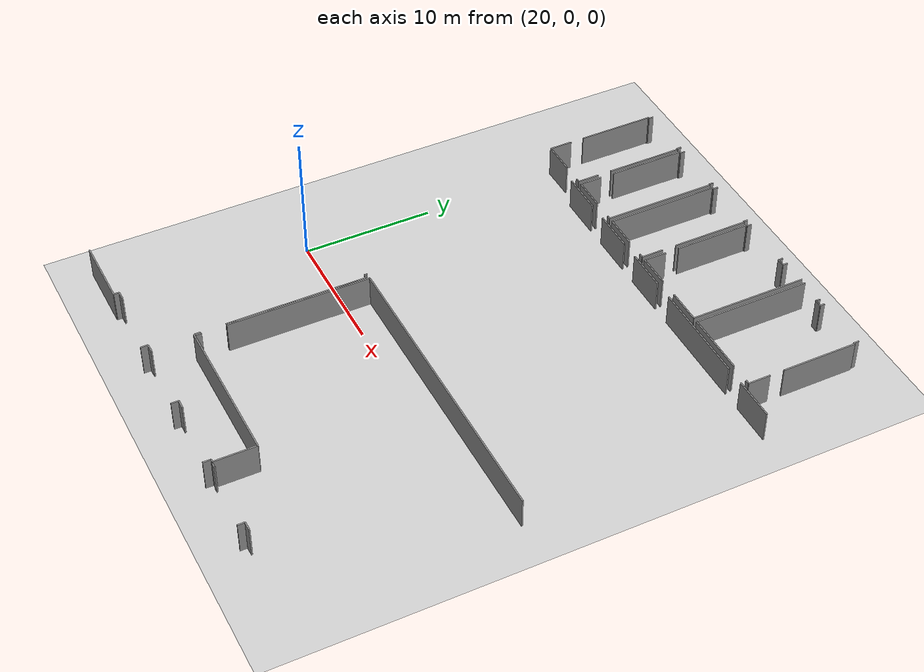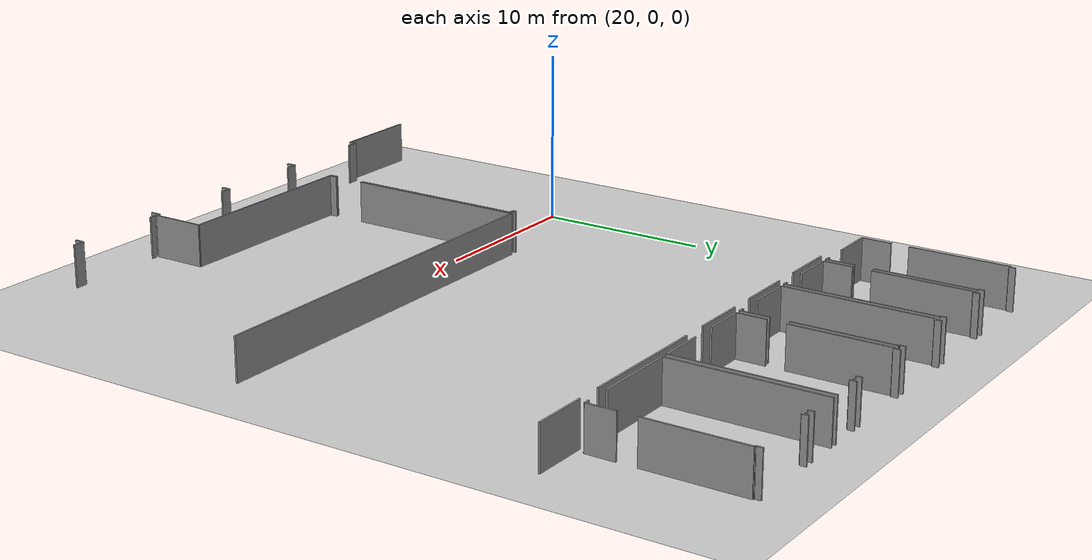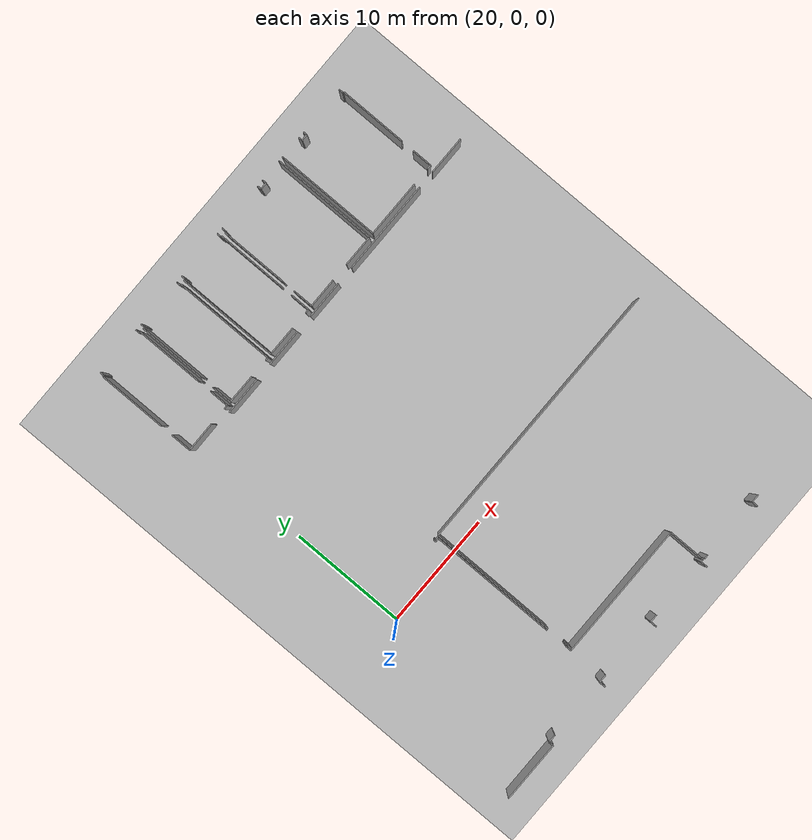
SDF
<sdf version="1.6">
 <world name="default">
  <model name="ground_plane">
   <static>1</static>
   <link name="link">
    <collision name="collision">
     <geometry><plane><normal>0 0 1</normal><size>100 100</size></plane></geometry>
     <surface><friction><ode><mu>100</mu><mu2>50</mu2></ode></friction></surface>
    </collision>
    <visual name="visual">
     <cast_shadows>0</cast_shadows>
     <geometry><plane><normal>0 0 1</normal><size>100 100</size></plane></geometry>
     <material>
      <script><uri>file://media/materials/scripts/gazebo.material</uri><name>Gazebo/Grey</name></script>
     </material>
    </visual>
   </link>
  </model>
  <model name="50010536_PLAN3">
   <static>1</static>
   <link name="Wall_521">
    <collision name="Wall_521_Collision">
     <geometry><box><size>1.76846649525 0.1 2.5</size></box></geometry>
     <pose>0.884233247627 0 1.25 0 0 0</pose>
    </collision>
    <visual name="Wall_521_Visual">
     <pose>0.884233247627 0 1.25 0 0 0</pose>
     <geometry><box><size>1.76846649525 0.1 2.5</size></box></geometry>
     <material>
      <script><uri>file://media/materials/scripts/gazebo.material</uri><name>Gazebo/Grey</name></script>
      <ambient>1 1 1 1</ambient>
     </material>
    </visual>
    <pose>122.498555693 -9.07321842364 0 0 0 1.57079632679</pose>
   </link>
   <link name="Wall_522">
    <collision name="Wall_522_Collision">
     <geometry><box><size>5.85417261848 0.1 2.5</size></box></geometry>
     <pose>2.92708630924 0 1.25 0 0 0</pose>
    </collision>
    <visual name="Wall_522_Visual">
     <pose>2.92708630924 0 1.25 0 0 0</pose>
     <geometry><box><size>5.85417261848 0.1 2.5</size></box></geometry>
     <material>
      <script><uri>file://media/materials/scripts/gazebo.material</uri><name>Gazebo/Grey</name></script>
      <ambient>1 1 1 1</ambient>
     </material>
    </visual>
    <pose>122.498555693 -6.24732882583 0 0 0 1.57079632679</pose>
   </link>
   <link name="Wall_523">
    <collision name="Wall_523_Collision">
     <geometry><box><size>0.113005110624 0.1 2.5</size></box></geometry>
     <pose>0.0565025553122 0 1.25 0 0 0</pose>
    </collision>
    <visual name="Wall_523_Visual">
     <pose>0.0565025553122 0 1.25 0 0 0</pose>
     <geometry><box><size>0.113005110624 0.1 2.5</size></box></geometry>
     <material>
      <script><uri>file://media/materials/scripts/gazebo.material</uri><name>Gazebo/Grey</name></script>
      <ambient>1 1 1 1</ambient>
     </material>
    </visual>
    <pose>122.498555693 -0.393156207345 0 0 0 0.0</pose>
   </link>
   <link name="Wall_524">
    <collision name="Wall_524_Collision">
     <geometry><box><size>0.366060375202 0.1 2.5</size></box></geometry>
     <pose>0.183030187601 0 1.25 0 0 0</pose>
    </collision>
    <visual name="Wall_524_Visual">
     <pose>0.183030187601 0 1.25 0 0 0</pose>
     <geometry><box><size>0.366060375202 0.1 2.5</size></box></geometry>
     <material>
      <script><uri>file://media/materials/scripts/gazebo.material</uri><name>Gazebo/Grey</name></script>
      <ambient>1 1 1 1</ambient>
     </material>
    </visual>
    <pose>122.611560804 -0.393156207345 0 0 0 1.57079632679</pose>
   </link>
   <link name="Wall_525">
    <collision name="Wall_525_Collision">
     <geometry><box><size>0.363140018411 0.1 2.5</size></box></geometry>
     <pose>0.181570009205 0 1.25 0 0 0</pose>
    </collision>
    <visual name="Wall_525_Visual">
     <pose>0.181570009205 0 1.25 0 0 0</pose>
     <geometry><box><size>0.363140018411 0.1 2.5</size></box></geometry>
     <material>
      <script><uri>file://media/materials/scripts/gazebo.material</uri><name>Gazebo/Grey</name></script>
      <ambient>1 1 1 1</ambient>
     </material>
    </visual>
    <pose>126.838713773 -0.027095832143 0 0 0 -1.57079632679</pose>
   </link>
   <link name="Wall_526">
    <collision name="Wall_526_Collision">
     <geometry><box><size>0.099546074977 0.1 2.5</size></box></geometry>
     <pose>0.0497730374885 0 1.25 0 0 0</pose>
    </collision>
    <visual name="Wall_526_Visual">
     <pose>0.0497730374885 0 1.25 0 0 0</pose>
     <geometry><box><size>0.099546074977 0.1 2.5</size></box></geometry>
     <material>
      <script><uri>file://media/materials/scripts/gazebo.material</uri><name>Gazebo/Grey</name></script>
      <ambient>1 1 1 1</ambient>
     </material>
    </visual>
    <pose>126.838713773 -0.390235850554 0 0 0 0.0</pose>
   </link>
   <link name="Wall_527">
    <collision name="Wall_527_Collision">
     <geometry><box><size>5.87283750754 0.1 2.5</size></box></geometry>
     <pose>2.93641875377 0 1.25 0 0 0</pose>
    </collision>
    <visual name="Wall_527_Visual">
     <pose>2.93641875377 0 1.25 0 0 0</pose>
     <geometry><box><size>5.87283750754 0.1 2.5</size></box></geometry>
     <material>
      <script><uri>file://media/materials/scripts/gazebo.material</uri><name>Gazebo/Grey</name></script>
      <ambient>1 1 1 1</ambient>
     </material>
    </visual>
    <pose>126.938259848 -0.390235850554 0 0 0 -1.57079632679</pose>
   </link>
   <link name="Wall_528">
    <collision name="Wall_528_Collision">
     <geometry><box><size>1.68237945592 0.1 2.5</size></box></geometry>
     <pose>0.841189727962 0 1.25 0 0 0</pose>
    </collision>
    <visual name="Wall_528_Visual">
     <pose>0.841189727962 0 1.25 0 0 0</pose>
     <geometry><box><size>1.68237945592 0.1 2.5</size></box></geometry>
     <material>
      <script><uri>file://media/materials/scripts/gazebo.material</uri><name>Gazebo/Grey</name></script>
      <ambient>1 1 1 1</ambient>
     </material>
    </visual>
    <pose>126.938259848 -7.377125988 0 0 0 -1.57079632679</pose>
   </link>
   <link name="Wall_529">
    <collision name="Wall_529_Collision">
     <geometry><box><size>0.354505920071 0.1 2.5</size></box></geometry>
     <pose>0.177252960036 0 1.25 0 0 0</pose>
    </collision>
    <visual name="Wall_529_Visual">
     <pose>0.177252960036 0 1.25 0 0 0</pose>
     <geometry><box><size>0.354505920071 0.1 2.5</size></box></geometry>
     <material>
      <script><uri>file://media/materials/scripts/gazebo.material</uri><name>Gazebo/Grey</name></script>
      <ambient>1 1 1 1</ambient>
     </material>
    </visual>
    <pose>126.938259848 -9.05950544393 0 0 0 3.14159265359</pose>
   </link>
   <link name="Wall_530">
    <collision name="Wall_530_Collision">
     <geometry><box><size>2.59153550332 0.1 2.5</size></box></geometry>
     <pose>1.29576775166 0 1.25 0 0 0</pose>
    </collision>
    <visual name="Wall_530_Visual">
     <pose>1.29576775166 0 1.25 0 0 0</pose>
     <geometry><box><size>2.59153550332 0.1 2.5</size></box></geometry>
     <material>
      <script><uri>file://media/materials/scripts/gazebo.material</uri><name>Gazebo/Grey</name></script>
      <ambient>1 1 1 1</ambient>
     </material>
    </visual>
    <pose>125.090054915 -9.05950544393 0 0 0 -3.13630117921</pose>
   </link>
   <link name="Wall_531">
    <collision name="Wall_531_Collision">
     <geometry><box><size>1.74383392058 0.1 2.5</size></box></geometry>
     <pose>0.871916960289 0 1.25 0 0 0</pose>
    </collision>
    <visual name="Wall_531_Visual">
     <pose>0.871916960289 0 1.25 0 0 0</pose>
     <geometry><box><size>1.74383392058 0.1 2.5</size></box></geometry>
     <material>
      <script><uri>file://media/materials/scripts/gazebo.material</uri><name>Gazebo/Grey</name></script>
      <ambient>1 1 1 1</ambient>
     </material>
    </visual>
    <pose>127.27727518 -9.06356854903 0 0 0 1.57079632679</pose>
   </link>
   <link name="Wall_532">
    <collision name="Wall_532_Collision">
     <geometry><box><size>5.82179474971 0.1 2.5</size></box></geometry>
     <pose>2.91089737485 0 1.25 0 0 0</pose>
    </collision>
    <visual name="Wall_532_Visual">
     <pose>2.91089737485 0 1.25 0 0 0</pose>
     <geometry><box><size>5.82179474971 0.1 2.5</size></box></geometry>
     <material>
      <script><uri>file://media/materials/scripts/gazebo.material</uri><name>Gazebo/Grey</name></script>
      <ambient>1 1 1 1</ambient>
     </material>
    </visual>
    <pose>127.27727518 -6.21558581722 0 0 0 1.57079632679</pose>
   </link>
   <link name="Wall_533">
    <collision name="Wall_533_Collision">
     <geometry><box><size>0.149319112465 0.1 2.5</size></box></geometry>
     <pose>0.0746595562327 0 1.25 0 0 0</pose>
    </collision>
    <visual name="Wall_533_Visual">
     <pose>0.0746595562327 0 1.25 0 0 0</pose>
     <geometry><box><size>0.149319112465 0.1 2.5</size></box></geometry>
     <material>
      <script><uri>file://media/materials/scripts/gazebo.material</uri><name>Gazebo/Grey</name></script>
      <ambient>1 1 1 1</ambient>
     </material>
    </visual>
    <pose>127.27727518 -0.393791067517 0 0 0 0.0</pose>
   </link>
   <link name="Wall_534">
    <collision name="Wall_534_Collision">
     <geometry><box><size>0.358899152462 0.1 2.5</size></box></geometry>
     <pose>0.179449576231 0 1.25 0 0 0</pose>
    </collision>
    <visual name="Wall_534_Visual">
     <pose>0.179449576231 0 1.25 0 0 0</pose>
     <geometry><box><size>0.358899152462 0.1 2.5</size></box></geometry>
     <material>
      <script><uri>file://media/materials/scripts/gazebo.material</uri><name>Gazebo/Grey</name></script>
      <ambient>1 1 1 1</ambient>
     </material>
    </visual>
    <pose>127.426594293 -0.393791067517 0 0 0 1.57079632679</pose>
   </link>
   <link name="Wall_535">
    <collision name="Wall_535_Collision">
     <geometry><box><size>0.343916452401 0.1 2.5</size></box></geometry>
     <pose>0.171958226201 0 1.25 0 0 0</pose>
    </collision>
    <visual name="Wall_535_Visual">
     <pose>0.171958226201 0 1.25 0 0 0</pose>
     <geometry><box><size>0.343916452401 0.1 2.5</size></box></geometry>
     <material>
      <script><uri>file://media/materials/scripts/gazebo.material</uri><name>Gazebo/Grey</name></script>
      <ambient>1 1 1 1</ambient>
     </material>
    </visual>
    <pose>131.609053106 -0.0348919150557 0 0 0 -1.57079632679</pose>
   </link>
   <link name="Wall_536">
    <collision name="Wall_536_Collision">
     <geometry><box><size>0.104117068216 0.1 2.5</size></box></geometry>
     <pose>0.0520585341079 0 1.25 0 0 0</pose>
    </collision>
    <visual name="Wall_536_Visual">
     <pose>0.0520585341079 0 1.25 0 0 0</pose>
     <geometry><box><size>0.104117068216 0.1 2.5</size></box></geometry>
     <material>
      <script><uri>file://media/materials/scripts/gazebo.material</uri><name>Gazebo/Grey</name></script>
      <ambient>1 1 1 1</ambient>
     </material>
    </visual>
    <pose>131.609053106 -0.378808367457 0 0 0 0.0</pose>
   </link>
   <link name="Wall_537">
    <collision name="Wall_537_Collision">
     <geometry><box><size>8.69364822398 0.1 2.5</size></box></geometry>
     <pose>4.34682411199 0 1.25 0 0 0</pose>
    </collision>
    <visual name="Wall_537_Visual">
     <pose>4.34682411199 0 1.25 0 0 0</pose>
     <geometry><box><size>8.69364822398 0.1 2.5</size></box></geometry>
     <material>
      <script><uri>file://media/materials/scripts/gazebo.material</uri><name>Gazebo/Grey</name></script>
      <ambient>1 1 1 1</ambient>
     </material>
    </visual>
    <pose>131.713170174 -0.378808367457 0 0 0 -1.57079632679</pose>
   </link>
   <link name="Wall_538">
    <collision name="Wall_538_Collision">
     <geometry><box><size>0.286956797765 0.1 2.5</size></box></geometry>
     <pose>0.143478398883 0 1.25 0 0 0</pose>
    </collision>
    <visual name="Wall_538_Visual">
     <pose>0.143478398883 0 1.25 0 0 0</pose>
     <geometry><box><size>0.286956797765 0.1 2.5</size></box></geometry>
     <material>
      <script><uri>file://media/materials/scripts/gazebo.material</uri><name>Gazebo/Grey</name></script>
      <ambient>1 1 1 1</ambient>
     </material>
    </visual>
    <pose>131.713170174 -9.07245659144 0 0 0 3.14159265359</pose>
   </link>
   <link name="Wall_539">
    <collision name="Wall_539_Collision">
     <geometry><box><size>2.53869441468 0.1 2.5</size></box></geometry>
     <pose>1.26934720734 0 1.25 0 0 0</pose>
    </collision>
    <visual name="Wall_539_Visual">
     <pose>1.26934720734 0 1.25 0 0 0</pose>
     <geometry><box><size>2.53869441468 0.1 2.5</size></box></geometry>
     <material>
      <script><uri>file://media/materials/scripts/gazebo.material</uri><name>Gazebo/Grey</name></script>
      <ambient>1 1 1 1</ambient>
     </material>
    </visual>
    <pose>129.815954036 -9.07245659144 0 0 0 3.13809161758</pose>
   </link>
   <link name="Wall_540">
    <collision name="Wall_540_Collision">
     <geometry><box><size>8.68328730597 0.1 2.5</size></box></geometry>
     <pose>4.34164365299 0 1.25 0 0 0</pose>
    </collision>
    <visual name="Wall_540_Visual">
     <pose>4.34164365299 0 1.25 0 0 0</pose>
     <geometry><box><size>8.68328730597 0.1 2.5</size></box></geometry>
     <material>
      <script><uri>file://media/materials/scripts/gazebo.material</uri><name>Gazebo/Grey</name></script>
      <ambient>1 1 1 1</ambient>
     </material>
    </visual>
    <pose>132.080881186 -9.06712376599 0 0 0 1.57079632679</pose>
   </link>
   <link name="Wall_541">
    <collision name="Wall_541_Collision">
     <geometry><box><size>0.145002063296 0.1 2.5</size></box></geometry>
     <pose>0.0725010316478 0 1.25 0 0 0</pose>
    </collision>
    <visual name="Wall_541_Visual">
     <pose>0.0725010316478 0 1.25 0 0 0</pose>
     <geometry><box><size>0.145002063296 0.1 2.5</size></box></geometry>
     <material>
      <script><uri>file://media/materials/scripts/gazebo.material</uri><name>Gazebo/Grey</name></script>
      <ambient>1 1 1 1</ambient>
     </material>
    </visual>
    <pose>132.080881186 -0.38383646002 0 0 0 0.0</pose>
   </link>
   <link name="Wall_542">
    <collision name="Wall_542_Collision">
     <geometry><box><size>0.363190807225 0.1 2.5</size></box></geometry>
     <pose>0.181595403612 0 1.25 0 0 0</pose>
    </collision>
    <visual name="Wall_542_Visual">
     <pose>0.181595403612 0 1.25 0 0 0</pose>
     <geometry><box><size>0.363190807225 0.1 2.5</size></box></geometry>
     <material>
      <script><uri>file://media/materials/scripts/gazebo.material</uri><name>Gazebo/Grey</name></script>
      <ambient>1 1 1 1</ambient>
     </material>
    </visual>
    <pose>132.225883249 -0.38383646002 0 0 0 1.57079632679</pose>
   </link>
   <link name="Wall_543">
    <collision name="Wall_543_Collision">
     <geometry><box><size>0.346684442751 0.1 2.5</size></box></geometry>
     <pose>0.173342221376 0 1.25 0 0 0</pose>
    </collision>
    <visual name="Wall_543_Visual">
     <pose>0.173342221376 0 1.25 0 0 0</pose>
     <geometry><box><size>0.346684442751 0.1 2.5</size></box></geometry>
     <material>
      <script><uri>file://media/materials/scripts/gazebo.material</uri><name>Gazebo/Grey</name></script>
      <ambient>1 1 1 1</ambient>
     </material>
    </visual>
    <pose>136.431450973 -0.020645652795 0 0 0 -1.57079632679</pose>
   </link>
   <link name="Wall_544">
    <collision name="Wall_544_Collision">
     <geometry><box><size>0.0825318223661 0.1 2.5</size></box></geometry>
     <pose>0.0412659111831 0 1.25 0 0 0</pose>
    </collision>
    <visual name="Wall_544_Visual">
     <pose>0.0412659111831 0 1.25 0 0 0</pose>
     <geometry><box><size>0.0825318223661 0.1 2.5</size></box></geometry>
     <material>
      <script><uri>file://media/materials/scripts/gazebo.material</uri><name>Gazebo/Grey</name></script>
      <ambient>1 1 1 1</ambient>
     </material>
    </visual>
    <pose>136.431450973 -0.367330095546 0 0 0 0.0</pose>
   </link>
   <link name="Wall_545">
    <collision name="Wall_545_Collision">
     <geometry><box><size>5.88456972352 0.1 2.5</size></box></geometry>
     <pose>2.94228486176 0 1.25 0 0 0</pose>
    </collision>
    <visual name="Wall_545_Visual">
     <pose>2.94228486176 0 1.25 0 0 0</pose>
     <geometry><box><size>5.88456972352 0.1 2.5</size></box></geometry>
     <material>
      <script><uri>file://media/materials/scripts/gazebo.material</uri><name>Gazebo/Grey</name></script>
      <ambient>1 1 1 1</ambient>
     </material>
    </visual>
    <pose>136.513982795 -0.367330095546 0 0 0 -1.57079632679</pose>
   </link>
   <link name="Wall_546">
    <collision name="Wall_546_Collision">
     <geometry><box><size>1.70777386281 0.1 2.5</size></box></geometry>
     <pose>0.853886931403 0 1.25 0 0 0</pose>
    </collision>
    <visual name="Wall_546_Visual">
     <pose>0.853886931403 0 1.25 0 0 0</pose>
     <geometry><box><size>1.70777386281 0.1 2.5</size></box></geometry>
     <material>
      <script><uri>file://media/materials/scripts/gazebo.material</uri><name>Gazebo/Grey</name></script>
      <ambient>1 1 1 1</ambient>
     </material>
    </visual>
    <pose>136.513982795 -7.35579468622 0 0 0 -1.57079632679</pose>
   </link>
   <link name="Wall_547">
    <collision name="Wall_547_Collision">
     <geometry><box><size>0.346633653938 0.1 2.5</size></box></geometry>
     <pose>0.173316826969 0 1.25 0 0 0</pose>
    </collision>
    <visual name="Wall_547_Visual">
     <pose>0.173316826969 0 1.25 0 0 0</pose>
     <geometry><box><size>0.346633653938 0.1 2.5</size></box></geometry>
     <material>
      <script><uri>file://media/materials/scripts/gazebo.material</uri><name>Gazebo/Grey</name></script>
      <ambient>1 1 1 1</ambient>
     </material>
    </visual>
    <pose>136.513982795 -9.06356854903 0 0 0 3.14159265359</pose>
   </link>
   <link name="Wall_548">
    <collision name="Wall_548_Collision">
     <geometry><box><size>2.58464517757 0.1 2.5</size></box></geometry>
     <pose>1.29232258878 0 1.25 0 0 0</pose>
    </collision>
    <visual name="Wall_548_Visual">
     <pose>1.29232258878 0 1.25 0 0 0</pose>
     <geometry><box><size>2.58464517757 0.1 2.5</size></box></geometry>
     <material>
      <script><uri>file://media/materials/scripts/gazebo.material</uri><name>Gazebo/Grey</name></script>
      <ambient>1 1 1 1</ambient>
     </material>
    </visual>
    <pose>134.665523918 -9.06356854903 0 0 0 -3.14021713864</pose>
   </link>
   <link name="Wall_549">
    <collision name="Wall_549_Collision">
     <geometry><box><size>1.75627717995 0.1 2.5</size></box></geometry>
     <pose>0.878138589976 0 1.25 0 0 0</pose>
    </collision>
    <visual name="Wall_549_Visual">
     <pose>0.878138589976 0 1.25 0 0 0</pose>
     <geometry><box><size>1.75627717995 0.1 2.5</size></box></geometry>
     <material>
      <script><uri>file://media/materials/scripts/gazebo.material</uri><name>Gazebo/Grey</name></script>
      <ambient>1 1 1 1</ambient>
     </material>
    </visual>
    <pose>136.879154366 -9.06686982192 0 0 0 1.57079632679</pose>
   </link>
   <link name="Wall_550">
    <collision name="Wall_550_Collision">
     <geometry><box><size>5.80983398407 0.1 2.5</size></box></geometry>
     <pose>2.90491699203 0 1.25 0 0 0</pose>
    </collision>
    <visual name="Wall_550_Visual">
     <pose>2.90491699203 0 1.25 0 0 0</pose>
     <geometry><box><size>5.80983398407 0.1 2.5</size></box></geometry>
     <material>
      <script><uri>file://media/materials/scripts/gazebo.material</uri><name>Gazebo/Grey</name></script>
      <ambient>1 1 1 1</ambient>
     </material>
    </visual>
    <pose>136.879154366 -6.21431609688 0 0 0 1.57079632679</pose>
   </link>
   <link name="Wall_551">
    <collision name="Wall_551_Collision">
     <geometry><box><size>0.111989334349 0.1 2.5</size></box></geometry>
     <pose>0.0559946671746 0 1.25 0 0 0</pose>
    </collision>
    <visual name="Wall_551_Visual">
     <pose>0.0559946671746 0 1.25 0 0 0</pose>
     <geometry><box><size>0.111989334349 0.1 2.5</size></box></geometry>
     <material>
      <script><uri>file://media/materials/scripts/gazebo.material</uri><name>Gazebo/Grey</name></script>
      <ambient>1 1 1 1</ambient>
     </material>
    </visual>
    <pose>136.879154366 -0.404482112815 0 0 0 0.0</pose>
   </link>
   <link name="Wall_552">
    <collision name="Wall_552_Collision">
     <geometry><box><size>0.379722566105 0.1 2.5</size></box></geometry>
     <pose>0.189861283052 0 1.25 0 0 0</pose>
    </collision>
    <visual name="Wall_552_Visual">
     <pose>0.189861283052 0 1.25 0 0 0</pose>
     <geometry><box><size>0.379722566105 0.1 2.5</size></box></geometry>
     <material>
      <script><uri>file://media/materials/scripts/gazebo.material</uri><name>Gazebo/Grey</name></script>
      <ambient>1 1 1 1</ambient>
     </material>
    </visual>
    <pose>136.991143701 -0.404482112815 0 0 0 1.57079632679</pose>
   </link>
   <link name="Wall_553">
    <collision name="Wall_553_Collision">
     <geometry><box><size>0.346481287496 0.1 2.5</size></box></geometry>
     <pose>0.173240643748 0 1.25 0 0 0</pose>
    </collision>
    <visual name="Wall_553_Visual">
     <pose>0.173240643748 0 1.25 0 0 0</pose>
     <geometry><box><size>0.346481287496 0.1 2.5</size></box></geometry>
     <material>
      <script><uri>file://media/materials/scripts/gazebo.material</uri><name>Gazebo/Grey</name></script>
      <ambient>1 1 1 1</ambient>
     </material>
    </visual>
    <pose>141.18706155 -0.0247595467098 0 0 0 -1.57079632679</pose>
   </link>
   <link name="Wall_554">
    <collision name="Wall_554_Collision">
     <geometry><box><size>0.593213344761 0.1 2.5</size></box></geometry>
     <pose>0.29660667238 0 1.25 0 0 0</pose>
    </collision>
    <visual name="Wall_554_Visual">
     <pose>0.29660667238 0 1.25 0 0 0</pose>
     <geometry><box><size>0.593213344761 0.1 2.5</size></box></geometry>
     <material>
      <script><uri>file://media/materials/scripts/gazebo.material</uri><name>Gazebo/Grey</name></script>
      <ambient>1 1 1 1</ambient>
     </material>
    </visual>
    <pose>141.18706155 -0.371240834206 0 0 0 0.0</pose>
   </link>
   <link name="Wall_555">
    <collision name="Wall_555_Collision">
     <geometry><box><size>0.365476303844 0.1 2.5</size></box></geometry>
     <pose>0.182738151922 0 1.25 0 0 0</pose>
    </collision>
    <visual name="Wall_555_Visual">
     <pose>0.182738151922 0 1.25 0 0 0</pose>
     <geometry><box><size>0.365476303844 0.1 2.5</size></box></geometry>
     <material>
      <script><uri>file://media/materials/scripts/gazebo.material</uri><name>Gazebo/Grey</name></script>
      <ambient>1 1 1 1</ambient>
     </material>
    </visual>
    <pose>141.780274894 -0.371240834206 0 0 0 1.57079632679</pose>
   </link>
   <link name="Wall_556">
    <collision name="Wall_556_Collision">
     <geometry><box><size>9.05145541694 0.1 2.5</size></box></geometry>
     <pose>4.52572770847 0 1.25 0 0 0</pose>
    </collision>
    <visual name="Wall_556_Visual">
     <pose>4.52572770847 0 1.25 0 0 0</pose>
     <geometry><box><size>9.05145541694 0.1 2.5</size></box></geometry>
     <material>
      <script><uri>file://media/materials/scripts/gazebo.material</uri><name>Gazebo/Grey</name></script>
      <ambient>1 1 1 1</ambient>
     </material>
    </visual>
    <pose>143.712027426 -0.00576453036219 0 0 0 -1.57079632679</pose>
   </link>
   <link name="Wall_557">
    <collision name="Wall_557_Collision">
     <geometry><box><size>2.72431197029 0.1 2.5</size></box></geometry>
     <pose>1.36215598514 0 1.25 0 0 0</pose>
    </collision>
    <visual name="Wall_557_Visual">
     <pose>1.36215598514 0 1.25 0 0 0</pose>
     <geometry><box><size>2.72431197029 0.1 2.5</size></box></geometry>
     <material>
      <script><uri>file://media/materials/scripts/gazebo.material</uri><name>Gazebo/Grey</name></script>
      <ambient>1 1 1 1</ambient>
     </material>
    </visual>
    <pose>143.712027426 -9.05721994731 0 0 0 3.14159265359</pose>
   </link>
   <link name="Wall_558">
    <collision name="Wall_558_Collision">
     <geometry><box><size>2.56002834514 0.1 2.5</size></box></geometry>
     <pose>1.28001417257 0 1.25 0 0 0</pose>
    </collision>
    <visual name="Wall_558_Visual">
     <pose>1.28001417257 0 1.25 0 0 0</pose>
     <geometry><box><size>2.56002834514 0.1 2.5</size></box></geometry>
     <material>
      <script><uri>file://media/materials/scripts/gazebo.material</uri><name>Gazebo/Grey</name></script>
      <ambient>1 1 1 1</ambient>
     </material>
    </visual>
    <pose>139.439164524 -9.05721994731 0 0 0 -3.13782320413</pose>
   </link>
   <link name="Wall_559">
    <collision name="Wall_559_Collision">
     <geometry><box><size>9.05099831762 0.1 2.5</size></box></geometry>
     <pose>4.52549915881 0 1.25 0 0 0</pose>
    </collision>
    <visual name="Wall_559_Visual">
     <pose>4.52549915881 0 1.25 0 0 0</pose>
     <geometry><box><size>9.05099831762 0.1 2.5</size></box></geometry>
     <material>
      <script><uri>file://media/materials/scripts/gazebo.material</uri><name>Gazebo/Grey</name></script>
      <ambient>1 1 1 1</ambient>
     </material>
    </visual>
    <pose>144.113512999 -9.06356854903 0 0 0 1.57079632679</pose>
   </link>
   <link name="Wall_560">
    <collision name="Wall_560_Collision">
     <geometry><box><size>0.351509380059 0.1 2.5</size></box></geometry>
     <pose>0.17575469003 0 1.25 0 0 0</pose>
    </collision>
    <visual name="Wall_560_Visual">
     <pose>0.17575469003 0 1.25 0 0 0</pose>
     <geometry><box><size>0.351509380059 0.1 2.5</size></box></geometry>
     <material>
      <script><uri>file://media/materials/scripts/gazebo.material</uri><name>Gazebo/Grey</name></script>
      <ambient>1 1 1 1</ambient>
     </material>
    </visual>
    <pose>146.041456369 -0.0125702314065 0 0 0 -1.57079632679</pose>
   </link>
   <link name="Wall_561">
    <collision name="Wall_561_Collision">
     <geometry><box><size>0.55258229375 0.1 2.5</size></box></geometry>
     <pose>0.276291146875 0 1.25 0 0 0</pose>
    </collision>
    <visual name="Wall_561_Visual">
     <pose>0.276291146875 0 1.25 0 0 0</pose>
     <geometry><box><size>0.55258229375 0.1 2.5</size></box></geometry>
     <material>
      <script><uri>file://media/materials/scripts/gazebo.material</uri><name>Gazebo/Grey</name></script>
      <ambient>1 1 1 1</ambient>
     </material>
    </visual>
    <pose>146.041456369 -0.364079611466 0 0 0 0.0</pose>
   </link>
   <link name="Wall_562">
    <collision name="Wall_562_Collision">
     <geometry><box><size>0.351509380059 0.1 2.5</size></box></geometry>
     <pose>0.17575469003 0 1.25 0 0 0</pose>
    </collision>
    <visual name="Wall_562_Visual">
     <pose>0.17575469003 0 1.25 0 0 0</pose>
     <geometry><box><size>0.351509380059 0.1 2.5</size></box></geometry>
     <material>
      <script><uri>file://media/materials/scripts/gazebo.material</uri><name>Gazebo/Grey</name></script>
      <ambient>1 1 1 1</ambient>
     </material>
    </visual>
    <pose>146.594038663 -0.364079611466 0 0 0 1.57079632679</pose>
   </link>
   <link name="Wall_563">
    <collision name="Wall_563_Collision">
     <geometry><box><size>0.381220836111 0.1 2.5</size></box></geometry>
     <pose>0.190610418055 0 1.25 0 0 0</pose>
    </collision>
    <visual name="Wall_563_Visual">
     <pose>0.190610418055 0 1.25 0 0 0</pose>
     <geometry><box><size>0.381220836111 0.1 2.5</size></box></geometry>
     <material>
      <script><uri>file://media/materials/scripts/gazebo.material</uri><name>Gazebo/Grey</name></script>
      <ambient>1 1 1 1</ambient>
     </material>
    </visual>
    <pose>150.820175856 -0.0125702314065 0 0 0 -1.57079632679</pose>
   </link>
   <link name="Wall_564">
    <collision name="Wall_564_Collision">
     <geometry><box><size>0.0906580325683 0.1 2.5</size></box></geometry>
     <pose>0.0453290162842 0 1.25 0 0 0</pose>
    </collision>
    <visual name="Wall_564_Visual">
     <pose>0.0453290162842 0 1.25 0 0 0</pose>
     <geometry><box><size>0.0906580325683 0.1 2.5</size></box></geometry>
     <material>
      <script><uri>file://media/materials/scripts/gazebo.material</uri><name>Gazebo/Grey</name></script>
      <ambient>1 1 1 1</ambient>
     </material>
    </visual>
    <pose>150.820175856 -0.393791067517 0 0 0 0.0</pose>
   </link>
   <link name="Wall_565">
    <collision name="Wall_565_Collision">
     <geometry><box><size>5.83271434467 0.1 2.5</size></box></geometry>
     <pose>2.91635717233 0 1.25 0 0 0</pose>
    </collision>
    <visual name="Wall_565_Visual">
     <pose>2.91635717233 0 1.25 0 0 0</pose>
     <geometry><box><size>5.83271434467 0.1 2.5</size></box></geometry>
     <material>
      <script><uri>file://media/materials/scripts/gazebo.material</uri><name>Gazebo/Grey</name></script>
      <ambient>1 1 1 1</ambient>
     </material>
    </visual>
    <pose>150.910833889 -0.393791067517 0 0 0 -1.57079632679</pose>
   </link>
   <link name="Wall_566">
    <collision name="Wall_566_Collision">
     <geometry><box><size>1.71945528997 0.1 2.5</size></box></geometry>
     <pose>0.859727644986 0 1.25 0 0 0</pose>
    </collision>
    <visual name="Wall_566_Visual">
     <pose>0.859727644986 0 1.25 0 0 0</pose>
     <geometry><box><size>1.71945528997 0.1 2.5</size></box></geometry>
     <material>
      <script><uri>file://media/materials/scripts/gazebo.material</uri><name>Gazebo/Grey</name></script>
      <ambient>1 1 1 1</ambient>
     </material>
    </visual>
    <pose>150.910833889 -7.34741453195 0 0 0 -1.57079632679</pose>
   </link>
   <link name="Wall_567">
    <collision name="Wall_567_Collision">
     <geometry><box><size>0.336729835254 0.1 2.5</size></box></geometry>
     <pose>0.168364917627 0 1.25 0 0 0</pose>
    </collision>
    <visual name="Wall_567_Visual">
     <pose>0.168364917627 0 1.25 0 0 0</pose>
     <geometry><box><size>0.336729835254 0.1 2.5</size></box></geometry>
     <material>
      <script><uri>file://media/materials/scripts/gazebo.material</uri><name>Gazebo/Grey</name></script>
      <ambient>1 1 1 1</ambient>
     </material>
    </visual>
    <pose>150.910833889 -9.06686982192 0 0 0 3.14159265359</pose>
   </link>
   <link name="Wall_568">
    <collision name="Wall_568_Collision">
     <geometry><box><size>4.91915166484 0.1 2.5</size></box></geometry>
     <pose>2.45957583242 0 1.25 0 0 0</pose>
    </collision>
    <visual name="Wall_568_Visual">
     <pose>2.45957583242 0 1.25 0 0 0</pose>
     <geometry><box><size>4.91915166484 0.1 2.5</size></box></geometry>
     <material>
      <script><uri>file://media/materials/scripts/gazebo.material</uri><name>Gazebo/Grey</name></script>
      <ambient>1 1 1 1</ambient>
     </material>
    </visual>
    <pose>149.032663556 -9.06686982192 0 0 0 3.1409215474</pose>
   </link>
   <link name="Wall_601">
    <collision name="Wall_601_Collision">
     <geometry><box><size>3.2649588928 0.1 2.5</size></box></geometry>
     <pose>1.6324794464 0 1.25 0 0 0</pose>
    </collision>
    <visual name="Wall_601_Visual">
     <pose>1.6324794464 0 1.25 0 0 0</pose>
     <geometry><box><size>3.2649588928 0.1 2.5</size></box></geometry>
     <material>
      <script><uri>file://media/materials/scripts/gazebo.material</uri><name>Gazebo/Grey</name></script>
      <ambient>1 1 1 1</ambient>
     </material>
    </visual>
    <pose>126.632765133 -9.51355743897 0 0 0 0.0</pose>
   </link>
   <link name="Wall_602">
    <collision name="Wall_602_Collision">
     <geometry><box><size>3.26140367584 0.1 2.5</size></box></geometry>
     <pose>1.63070183792 0 1.25 0 0 0</pose>
    </collision>
    <visual name="Wall_602_Visual">
     <pose>1.63070183792 0 1.25 0 0 0</pose>
     <geometry><box><size>3.26140367584 0.1 2.5</size></box></geometry>
     <material>
      <script><uri>file://media/materials/scripts/gazebo.material</uri><name>Gazebo/Grey</name></script>
      <ambient>1 1 1 1</ambient>
     </material>
    </visual>
    <pose>131.440942132 -9.51355743897 0 0 0 0.0</pose>
   </link>
   <link name="Wall_603">
    <collision name="Wall_603_Collision">
     <geometry><box><size>3.29213090817 0.1 2.5</size></box></geometry>
     <pose>1.64606545408 0 1.25 0 0 0</pose>
    </collision>
    <visual name="Wall_603_Visual">
     <pose>1.64606545408 0 1.25 0 0 0</pose>
     <geometry><box><size>3.29213090817 0.1 2.5</size></box></geometry>
     <material>
      <script><uri>file://media/materials/scripts/gazebo.material</uri><name>Gazebo/Grey</name></script>
      <ambient>1 1 1 1</ambient>
     </material>
    </visual>
    <pose>136.202393423 -9.51355743897 0 0 0 0.0</pose>
   </link>
   <link name="Wall_604">
    <collision name="Wall_604_Collision">
     <geometry><box><size>8.06094657652 0.1 2.5</size></box></geometry>
     <pose>4.03047328826 0 1.25 0 0 0</pose>
    </collision>
    <visual name="Wall_604_Visual">
     <pose>4.03047328826 0 1.25 0 0 0</pose>
     <geometry><box><size>8.06094657652 0.1 2.5</size></box></geometry>
     <material>
      <script><uri>file://media/materials/scripts/gazebo.material</uri><name>Gazebo/Grey</name></script>
      <ambient>1 1 1 1</ambient>
     </material>
    </visual>
    <pose>141.045614703 -9.51355743897 0 0 0 0.0</pose>
   </link>
   <link name="Wall_605">
    <collision name="Wall_605_Collision">
     <geometry><box><size>3.2885756912 0.1 2.5</size></box></geometry>
     <pose>1.6442878456 0 1.25 0 0 0</pose>
    </collision>
    <visual name="Wall_605_Visual">
     <pose>1.6442878456 0 1.25 0 0 0</pose>
     <geometry><box><size>3.2885756912 0.1 2.5</size></box></geometry>
     <material>
      <script><uri>file://media/materials/scripts/gazebo.material</uri><name>Gazebo/Grey</name></script>
      <ambient>1 1 1 1</ambient>
     </material>
    </visual>
    <pose>150.623369203 -9.51355743897 0 0 0 0.0</pose>
   </link>
   <link name="Wall_825">
    <collision name="Wall_825_Collision">
     <geometry><box><size>0.196298765197 0.1 2.5</size></box></geometry>
     <pose>0.0981493825985 0 1.25 0 0 0</pose>
    </collision>
    <visual name="Wall_825_Visual">
     <pose>0.0981493825985 0 1.25 0 0 0</pose>
     <geometry><box><size>0.196298765197 0.1 2.5</size></box></geometry>
     <material>
      <script><uri>file://media/materials/scripts/gazebo.material</uri><name>Gazebo/Grey</name></script>
      <ambient>1 1 1 1</ambient>
     </material>
    </visual>
    <pose>129.274037393 -27.7200774529 0 0 0 -1.57079632679</pose>
   </link>
   <link name="Wall_826">
    <collision name="Wall_826_Collision">
     <geometry><box><size>0.327587848776 0.1 2.5</size></box></geometry>
     <pose>0.163793924388 0 1.25 0 0 0</pose>
    </collision>
    <visual name="Wall_826_Visual">
     <pose>0.163793924388 0 1.25 0 0 0</pose>
     <geometry><box><size>0.327587848776 0.1 2.5</size></box></geometry>
     <material>
      <script><uri>file://media/materials/scripts/gazebo.material</uri><name>Gazebo/Grey</name></script>
      <ambient>1 1 1 1</ambient>
     </material>
    </visual>
    <pose>129.274037393 -27.9163762181 0 0 0 0.0</pose>
   </link>
   <link name="Wall_827">
    <collision name="Wall_827_Collision">
     <geometry><box><size>10.8185252198 0.1 2.5</size></box></geometry>
     <pose>5.40926260991 0 1.25 0 0 0</pose>
    </collision>
    <visual name="Wall_827_Visual">
     <pose>5.40926260991 0 1.25 0 0 0</pose>
     <geometry><box><size>10.8185252198 0.1 2.5</size></box></geometry>
     <material>
      <script><uri>file://media/materials/scripts/gazebo.material</uri><name>Gazebo/Grey</name></script>
      <ambient>1 1 1 1</ambient>
     </material>
    </visual>
    <pose>129.601625242 -27.9163762181 0 0 0 -1.57079632679</pose>
   </link>
   <link name="Wall_828">
    <collision name="Wall_828_Collision">
     <geometry><box><size>0.490873885027 0.1 2.5</size></box></geometry>
     <pose>0.245436942513 0 1.25 0 0 0</pose>
    </collision>
    <visual name="Wall_828_Visual">
     <pose>0.245436942513 0 1.25 0 0 0</pose>
     <geometry><box><size>0.490873885027 0.1 2.5</size></box></geometry>
     <material>
      <script><uri>file://media/materials/scripts/gazebo.material</uri><name>Gazebo/Grey</name></script>
      <ambient>1 1 1 1</ambient>
     </material>
    </visual>
    <pose>129.601625242 -40.6404977304 0 0 0 -1.57079632679</pose>
   </link>
   <link name="Wall_829">
    <collision name="Wall_829_Collision">
     <geometry><box><size>11.782242961 0.1 2.5</size></box></geometry>
     <pose>5.89112148049 0 1.25 0 0 0</pose>
    </collision>
    <visual name="Wall_829_Visual">
     <pose>5.89112148049 0 1.25 0 0 0</pose>
     <geometry><box><size>11.782242961 0.1 2.5</size></box></geometry>
     <material>
      <script><uri>file://media/materials/scripts/gazebo.material</uri><name>Gazebo/Grey</name></script>
      <ambient>1 1 1 1</ambient>
     </material>
    </visual>
    <pose>129.601625242 -41.1313716154 0 0 0 0.0</pose>
   </link>
   <link name="Wall_830">
    <collision name="Wall_830_Collision">
     <geometry><box><size>3.20502809256 0.1 2.5</size></box></geometry>
     <pose>1.60251404628 0 1.25 0 0 0</pose>
    </collision>
    <visual name="Wall_830_Visual">
     <pose>1.60251404628 0 1.25 0 0 0</pose>
     <geometry><box><size>3.20502809256 0.1 2.5</size></box></geometry>
     <material>
      <script><uri>file://media/materials/scripts/gazebo.material</uri><name>Gazebo/Grey</name></script>
      <ambient>1 1 1 1</ambient>
     </material>
    </visual>
    <pose>141.383868203 -41.1313716154 0 0 0 -1.57079632679</pose>
   </link>
   <link name="Wall_831">
    <collision name="Wall_831_Collision">
     <geometry><box><size>0.224994444974 0.1 2.5</size></box></geometry>
     <pose>0.112497222487 0 1.25 0 0 0</pose>
    </collision>
    <visual name="Wall_831_Visual">
     <pose>0.112497222487 0 1.25 0 0 0</pose>
     <geometry><box><size>0.224994444974 0.1 2.5</size></box></geometry>
     <material>
      <script><uri>file://media/materials/scripts/gazebo.material</uri><name>Gazebo/Grey</name></script>
      <ambient>1 1 1 1</ambient>
     </material>
    </visual>
    <pose>141.383868203 -44.336399708 0 0 0 3.14159265359</pose>
   </link>
   <link name="Wall_832">
    <collision name="Wall_832_Collision">
     <geometry><box><size>0.613782814335 0.1 2.5</size></box></geometry>
     <pose>0.306891407168 0 1.25 0 0 0</pose>
    </collision>
    <visual name="Wall_832_Visual">
     <pose>0.306891407168 0 1.25 0 0 0</pose>
     <geometry><box><size>0.613782814335 0.1 2.5</size></box></geometry>
     <material>
      <script><uri>file://media/materials/scripts/gazebo.material</uri><name>Gazebo/Grey</name></script>
      <ambient>1 1 1 1</ambient>
     </material>
    </visual>
    <pose>141.158873758 -44.336399708 0 0 0 -1.57079632679</pose>
   </link>
   <link name="Wall_835">
    <collision name="Wall_835_Collision">
     <geometry><box><size>0.685648985811 0.1 2.5</size></box></geometry>
     <pose>0.342824492905 0 1.25 0 0 0</pose>
    </collision>
    <visual name="Wall_835_Visual">
     <pose>0.342824492905 0 1.25 0 0 0</pose>
     <geometry><box><size>0.685648985811 0.1 2.5</size></box></geometry>
     <material>
      <script><uri>file://media/materials/scripts/gazebo.material</uri><name>Gazebo/Grey</name></script>
      <ambient>1 1 1 1</ambient>
     </material>
    </visual>
    <pose>135.874805574 -44.3508745199 0 0 0 3.14159265359</pose>
   </link>
   <link name="Wall_836">
    <collision name="Wall_836_Collision">
     <geometry><box><size>0.577468812494 0.1 2.5</size></box></geometry>
     <pose>0.288734406247 0 1.25 0 0 0</pose>
    </collision>
    <visual name="Wall_836_Visual">
     <pose>0.288734406247 0 1.25 0 0 0</pose>
     <geometry><box><size>0.577468812494 0.1 2.5</size></box></geometry>
     <material>
      <script><uri>file://media/materials/scripts/gazebo.material</uri><name>Gazebo/Grey</name></script>
      <ambient>1 1 1 1</ambient>
     </material>
    </visual>
    <pose>135.189156588 -44.3508745199 0 0 0 -1.57079632679</pose>
   </link>
   <link name="Wall_839">
    <collision name="Wall_839_Collision">
     <geometry><box><size>0.696822524839 0.1 2.5</size></box></geometry>
     <pose>0.348411262419 0 1.25 0 0 0</pose>
    </collision>
    <visual name="Wall_839_Visual">
     <pose>0.348411262419 0 1.25 0 0 0</pose>
     <geometry><box><size>0.696822524839 0.1 2.5</size></box></geometry>
     <material>
      <script><uri>file://media/materials/scripts/gazebo.material</uri><name>Gazebo/Grey</name></script>
      <ambient>1 1 1 1</ambient>
     </material>
    </visual>
    <pose>129.86547313 -44.3541757928 0 0 0 3.14159265359</pose>
   </link>
   <link name="Wall_840">
    <collision name="Wall_840_Collision">
     <geometry><box><size>0.571120210774 0.1 2.5</size></box></geometry>
     <pose>0.285560105387 0 1.25 0 0 0</pose>
    </collision>
    <visual name="Wall_840_Visual">
     <pose>0.285560105387 0 1.25 0 0 0</pose>
     <geometry><box><size>0.571120210774 0.1 2.5</size></box></geometry>
     <material>
      <script><uri>file://media/materials/scripts/gazebo.material</uri><name>Gazebo/Grey</name></script>
      <ambient>1 1 1 1</ambient>
     </material>
    </visual>
    <pose>129.168650605 -44.3541757928 0 0 0 -1.57079632679</pose>
   </link>
   <link name="Wall_843">
    <collision name="Wall_843_Collision">
     <geometry><box><size>0.693013363807 0.1 2.5</size></box></geometry>
     <pose>0.346506681903 0 1.25 0 0 0</pose>
    </collision>
    <visual name="Wall_843_Visual">
     <pose>0.346506681903 0 1.25 0 0 0</pose>
     <geometry><box><size>0.693013363807 0.1 2.5</size></box></geometry>
     <material>
      <script><uri>file://media/materials/scripts/gazebo.material</uri><name>Gazebo/Grey</name></script>
      <ambient>1 1 1 1</ambient>
     </material>
    </visual>
    <pose>123.881535092 -44.3607783386 0 0 0 3.14159265359</pose>
   </link>
   <link name="Wall_844">
    <collision name="Wall_844_Collision">
     <geometry><box><size>0.422562930515 0.1 2.5</size></box></geometry>
     <pose>0.211281465257 0 1.25 0 0 0</pose>
    </collision>
    <visual name="Wall_844_Visual">
     <pose>0.211281465257 0 1.25 0 0 0</pose>
     <geometry><box><size>0.422562930515 0.1 2.5</size></box></geometry>
     <material>
      <script><uri>file://media/materials/scripts/gazebo.material</uri><name>Gazebo/Grey</name></script>
      <ambient>1 1 1 1</ambient>
     </material>
    </visual>
    <pose>123.188521728 -44.3607783386 0 0 0 -1.57079632679</pose>
   </link>
   <link name="Wall_845">
    <collision name="Wall_845_Collision">
     <geometry><box><size>5.28254451957 0.1 2.5</size></box></geometry>
     <pose>2.64127225978 0 1.25 0 0 0</pose>
    </collision>
    <visual name="Wall_845_Visual">
     <pose>2.64127225978 0 1.25 0 0 0</pose>
     <geometry><box><size>5.28254451957 0.1 2.5</size></box></geometry>
     <material>
      <script><uri>file://media/materials/scripts/gazebo.material</uri><name>Gazebo/Grey</name></script>
      <ambient>1 1 1 1</ambient>
     </material>
    </visual>
    <pose>123.188521728 -44.7833412691 0 0 0 3.14159265359</pose>
   </link>
   <link name="Wall_848">
    <collision name="Wall_848_Collision">
     <geometry><box><size>23.6820620258 0.1 2.5</size></box></geometry>
     <pose>11.8410310129 0 1.25 0 0 0</pose>
    </collision>
    <visual name="Wall_848_Visual">
     <pose>11.8410310129 0 1.25 0 0 0</pose>
     <geometry><box><size>23.6820620258 0.1 2.5</size></box></geometry>
     <material>
      <script><uri>file://media/materials/scripts/gazebo.material</uri><name>Gazebo/Grey</name></script>
      <ambient>1 1 1 1</ambient>
     </material>
    </visual>
    <pose>129.757800844 -27.7292194394 0 0 0 0.0</pose>
   </link>
   <link name="Wall_851">
    <collision name="Wall_851_Collision">
     <geometry><box><size>0.453036218773 0.1 2.5</size></box></geometry>
     <pose>0.226518109386 0 1.25 0 0 0</pose>
    </collision>
    <visual name="Wall_851_Visual">
     <pose>0.226518109386 0 1.25 0 0 0</pose>
     <geometry><box><size>0.453036218773 0.1 2.5</size></box></geometry>
     <material>
      <script><uri>file://media/materials/scripts/gazebo.material</uri><name>Gazebo/Grey</name></script>
      <ambient>1 1 1 1</ambient>
     </material>
    </visual>
    <pose>129.722756563 -41.0638224931 0 0 0 1.57079632679</pose>
   </link>
   <link name="Wall_852">
    <collision name="Wall_852_Collision">
     <geometry><box><size>10.9983734517 0.1 2.5</size></box></geometry>
     <pose>5.49918672587 0 1.25 0 0 0</pose>
    </collision>
    <visual name="Wall_852_Visual">
     <pose>5.49918672587 0 1.25 0 0 0</pose>
     <geometry><box><size>10.9983734517 0.1 2.5</size></box></geometry>
     <material>
      <script><uri>file://media/materials/scripts/gazebo.material</uri><name>Gazebo/Grey</name></script>
      <ambient>1 1 1 1</ambient>
     </material>
    </visual>
    <pose>129.722756563 -38.72753706 0 0 0 1.56761000648</pose>
   </link>
   <link name="Wall_896">
    <collision name="Wall_896_Collision">
     <geometry><box><size>0.702917182491 0.1 2.5</size></box></geometry>
     <pose>0.351458591245 0 1.25 0 0 0</pose>
    </collision>
    <visual name="Wall_896_Visual">
     <pose>0.351458591245 0 1.25 0 0 0</pose>
     <geometry><box><size>0.702917182491 0.1 2.5</size></box></geometry>
     <material>
      <script><uri>file://media/materials/scripts/gazebo.material</uri><name>Gazebo/Grey</name></script>
      <ambient>1 1 1 1</ambient>
     </material>
    </visual>
    <pose>147.874424658 -44.3602704504 0 0 0 3.14159265359</pose>
   </link>
   <link name="Wall_897">
    <collision name="Wall_897_Collision">
     <geometry><box><size>0.558676951401 0.1 2.5</size></box></geometry>
     <pose>0.279338475701 0 1.25 0 0 0</pose>
    </collision>
    <visual name="Wall_897_Visual">
     <pose>0.279338475701 0 1.25 0 0 0</pose>
     <geometry><box><size>0.558676951401 0.1 2.5</size></box></geometry>
     <material>
      <script><uri>file://media/materials/scripts/gazebo.material</uri><name>Gazebo/Grey</name></script>
      <ambient>1 1 1 1</ambient>
     </material>
    </visual>
    <pose>147.171507475 -44.3602704504 0 0 0 -1.57079632679</pose>
   </link>
   <link name="Wall_900">
    <collision name="Wall_900_Collision">
     <geometry><box><size>0.360334732625 0.1 2.5</size></box></geometry>
     <pose>0.180167366313 0 1.25 0 0 0</pose>
    </collision>
    <visual name="Wall_900_Visual">
     <pose>0.180167366313 0 1.25 0 0 0</pose>
     <geometry><box><size>0.360334732625 0.1 2.5</size></box></geometry>
     <material>
      <script><uri>file://media/materials/scripts/gazebo.material</uri><name>Gazebo/Grey</name></script>
      <ambient>1 1 1 1</ambient>
     </material>
    </visual>
    <pose>141.888455068 -44.3785544234 0 0 0 -3.10493771064</pose>
   </link>
   <pose>-102.5 29.6500539631 0 0 0 0</pose>
  </model>
 </world>
</sdf>
